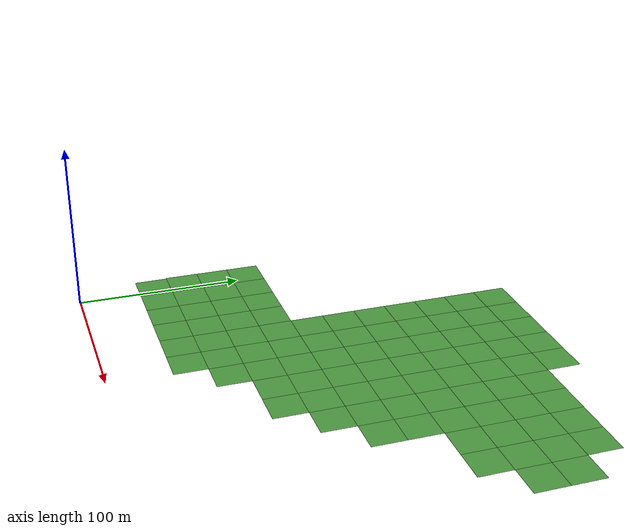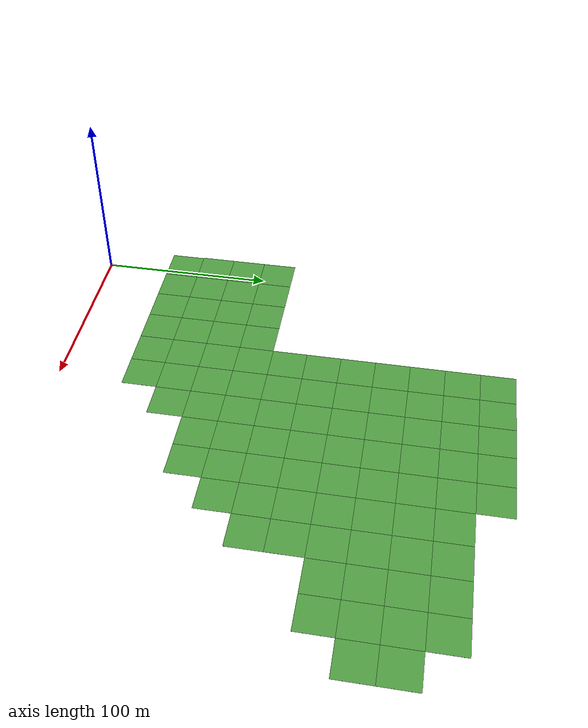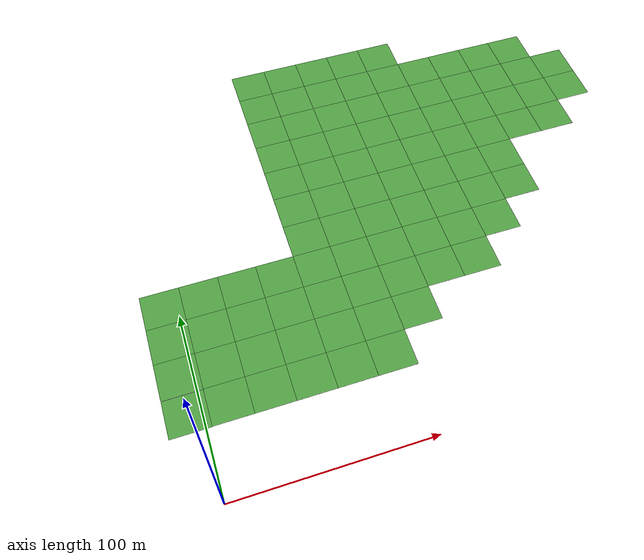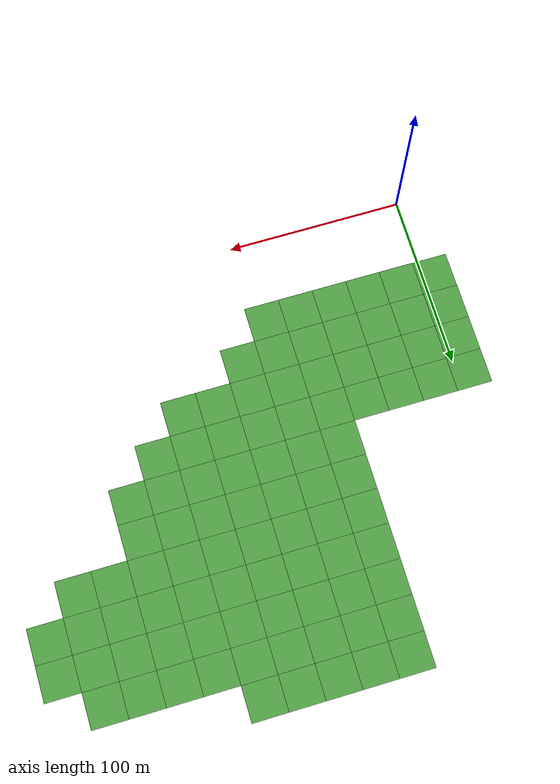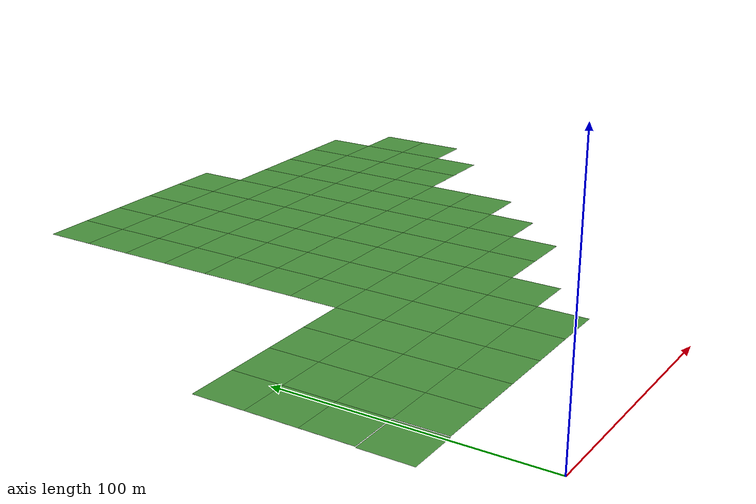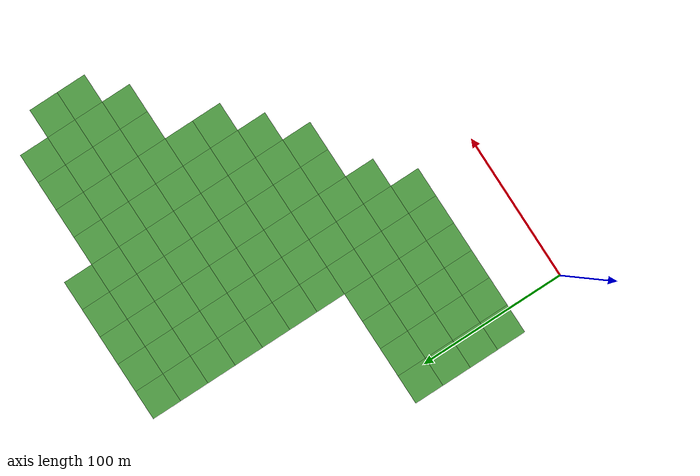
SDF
<sdf version="1.6">
 <world name="default">
  <model name="grass_plane_1">
   <static>1</static>
   <link name="link">
    <collision name="collision">
     <geometry><plane><normal>0 0 1</normal><size>500 500</size></plane></geometry>
     <surface><friction><ode><mu>0.5</mu><mu2>0.5</mu2></ode></friction></surface>
    </collision>
    <visual name="visual_0">
     <pose>-40 -40 0 0 -0 0</pose>
     <cast_shadows>0</cast_shadows>
     <geometry><plane><normal>0 0 1</normal><size>20 20</size></plane></geometry>
     <material>
      <script>
       <uri>model://grass_plane/materials/scripts</uri>
       <uri>model://grass_plane/materials/textures</uri>
       <name>vrc/grass</name>
      </script>
     </material>
    </visual>
    <visual name="visual_1">
     <pose>-20 -40 0 0 -0 0</pose>
     <cast_shadows>0</cast_shadows>
     <geometry><plane><normal>0 0 1</normal><size>20 20</size></plane></geometry>
     <material>
      <script>
       <uri>model://grass_plane/materials/scripts</uri>
       <uri>model://grass_plane/materials/textures</uri>
       <name>vrc/grass</name>
      </script>
     </material>
    </visual>
    <visual name="visual_2">
     <pose>0 -40 0 0 -0 0</pose>
     <cast_shadows>0</cast_shadows>
     <geometry><plane><normal>0 0 1</normal><size>20 20</size></plane></geometry>
     <material>
      <script>
       <uri>model://grass_plane/materials/scripts</uri>
       <uri>model://grass_plane/materials/textures</uri>
       <name>vrc/grass</name>
      </script>
     </material>
    </visual>
    <visual name="visual_3">
     <pose>20 -40 0 0 -0 0</pose>
     <cast_shadows>0</cast_shadows>
     <geometry><plane><normal>0 0 1</normal><size>20 20</size></plane></geometry>
     <material>
      <script>
       <uri>model://grass_plane/materials/scripts</uri>
       <uri>model://grass_plane/materials/textures</uri>
       <name>vrc/grass</name>
      </script>
     </material>
    </visual>
    <visual name="visual_4">
     <pose>40 -40 0 0 -0 0</pose>
     <cast_shadows>0</cast_shadows>
     <geometry><plane><normal>0 0 1</normal><size>20 20</size></plane></geometry>
     <material>
      <script>
       <uri>model://grass_plane/materials/scripts</uri>
       <uri>model://grass_plane/materials/textures</uri>
       <name>vrc/grass</name>
      </script>
     </material>
    </visual>
    <visual name="visual_5">
     <pose>60 -40 0 0 -0 0</pose>
     <cast_shadows>0</cast_shadows>
     <geometry><plane><normal>0 0 1</normal><size>20 20</size></plane></geometry>
     <material>
      <script>
       <uri>model://grass_plane/materials/scripts</uri>
       <uri>model://grass_plane/materials/textures</uri>
       <name>vrc/grass</name>
      </script>
     </material>
    </visual>
    <visual name="visual_6">
     <pose>-40 -20 0 0 -0 0</pose>
     <cast_shadows>0</cast_shadows>
     <geometry><plane><normal>0 0 1</normal><size>20 20</size></plane></geometry>
     <material>
      <script>
       <uri>model://grass_plane/materials/scripts</uri>
       <uri>model://grass_plane/materials/textures</uri>
       <name>vrc/grass</name>
      </script>
     </material>
    </visual>
    <visual name="visual_7">
     <pose>-20 -20 0 0 -0 0</pose>
     <cast_shadows>0</cast_shadows>
     <geometry><plane><normal>0 0 1</normal><size>20 20</size></plane></geometry>
     <material>
      <script>
       <uri>model://grass_plane/materials/scripts</uri>
       <uri>model://grass_plane/materials/textures</uri>
       <name>vrc/grass</name>
      </script>
     </material>
    </visual>
    <visual name="visual_8">
     <pose>0 -20 0 0 -0 0</pose>
     <cast_shadows>0</cast_shadows>
     <geometry><plane><normal>0 0 1</normal><size>20 20</size></plane></geometry>
     <material>
      <script>
       <uri>model://grass_plane/materials/scripts</uri>
       <uri>model://grass_plane/materials/textures</uri>
       <name>vrc/grass</name>
      </script>
     </material>
    </visual>
    <visual name="visual_9">
     <pose>20 -20 0 0 -0 0</pose>
     <cast_shadows>0</cast_shadows>
     <geometry><plane><normal>0 0 1</normal><size>20 20</size></plane></geometry>
     <material>
      <script>
       <uri>model://grass_plane/materials/scripts</uri>
       <uri>model://grass_plane/materials/textures</uri>
       <name>vrc/grass</name>
      </script>
     </material>
    </visual>
    <visual name="visual_10">
     <pose>40 -20 0 0 -0 0</pose>
     <cast_shadows>0</cast_shadows>
     <geometry><plane><normal>0 0 1</normal><size>20 20</size></plane></geometry>
     <material>
      <script>
       <uri>model://grass_plane/materials/scripts</uri>
       <uri>model://grass_plane/materials/textures</uri>
       <name>vrc/grass</name>
      </script>
     </material>
    </visual>
    <visual name="visual_11">
     <pose>60 -20 0 0 -0 0</pose>
     <cast_shadows>0</cast_shadows>
     <geometry><plane><normal>0 0 1</normal><size>20 20</size></plane></geometry>
     <material>
      <script>
       <uri>model://grass_plane/materials/scripts</uri>
       <uri>model://grass_plane/materials/textures</uri>
       <name>vrc/grass</name>
      </script>
     </material>
    </visual>
    <visual name="visual_12">
     <pose>80 -20 0 0 -0 0</pose>
     <cast_shadows>0</cast_shadows>
     <geometry><plane><normal>0 0 1</normal><size>20 20</size></plane></geometry>
     <material>
      <script>
       <uri>model://grass_plane/materials/scripts</uri>
       <uri>model://grass_plane/materials/textures</uri>
       <name>vrc/grass</name>
      </script>
     </material>
    </visual>
    <visual name="visual_13">
     <pose>-40 0 0 0 -0 0</pose>
     <cast_shadows>0</cast_shadows>
     <geometry><plane><normal>0 0 1</normal><size>20 20</size></plane></geometry>
     <material>
      <script>
       <uri>model://grass_plane/materials/scripts</uri>
       <uri>model://grass_plane/materials/textures</uri>
       <name>vrc/grass</name>
      </script>
     </material>
    </visual>
    <visual name="visual_14">
     <pose>-20 0 0 0 -0 0</pose>
     <cast_shadows>0</cast_shadows>
     <geometry><plane><normal>0 0 1</normal><size>20 20</size></plane></geometry>
     <material>
      <script>
       <uri>model://grass_plane/materials/scripts</uri>
       <uri>model://grass_plane/materials/textures</uri>
       <name>vrc/grass</name>
      </script>
     </material>
    </visual>
    <visual name="visual_15">
     <cast_shadows>0</cast_shadows>
     <geometry><plane><normal>0 0 1</normal><size>20 20</size></plane></geometry>
     <material>
      <script>
       <uri>model://grass_plane/materials/scripts</uri>
       <uri>model://grass_plane/materials/textures</uri>
       <name>vrc/grass</name>
      </script>
     </material>
    </visual>
    <visual name="visual_16">
     <pose>20 0 0 0 -0 0</pose>
     <cast_shadows>0</cast_shadows>
     <geometry><plane><normal>0 0 1</normal><size>20 20</size></plane></geometry>
     <material>
      <script>
       <uri>model://grass_plane/materials/scripts</uri>
       <uri>model://grass_plane/materials/textures</uri>
       <name>vrc/grass</name>
      </script>
     </material>
    </visual>
    <visual name="visual_17">
     <pose>40 0 0 0 -0 0</pose>
     <cast_shadows>0</cast_shadows>
     <geometry><plane><normal>0 0 1</normal><size>20 20</size></plane></geometry>
     <material>
      <script>
       <uri>model://grass_plane/materials/scripts</uri>
       <uri>model://grass_plane/materials/textures</uri>
       <name>vrc/grass</name>
      </script>
     </material>
    </visual>
    <visual name="visual_18">
     <pose>60 0 0 0 -0 0</pose>
     <cast_shadows>0</cast_shadows>
     <geometry><plane><normal>0 0 1</normal><size>20 20</size></plane></geometry>
     <material>
      <script>
       <uri>model://grass_plane/materials/scripts</uri>
       <uri>model://grass_plane/materials/textures</uri>
       <name>vrc/grass</name>
      </script>
     </material>
    </visual>
    <visual name="visual_19">
     <pose>80 0 0 0 -0 0</pose>
     <cast_shadows>0</cast_shadows>
     <geometry><plane><normal>0 0 1</normal><size>20 20</size></plane></geometry>
     <material>
      <script>
       <uri>model://grass_plane/materials/scripts</uri>
       <uri>model://grass_plane/materials/textures</uri>
       <name>vrc/grass</name>
      </script>
     </material>
    </visual>
    <visual name="visual_20">
     <pose>100 0 0 0 -0 0</pose>
     <cast_shadows>0</cast_shadows>
     <geometry><plane><normal>0 0 1</normal><size>20 20</size></plane></geometry>
     <material>
      <script>
       <uri>model://grass_plane/materials/scripts</uri>
       <uri>model://grass_plane/materials/textures</uri>
       <name>vrc/grass</name>
      </script>
     </material>
    </visual>
    <visual name="visual_21">
     <pose>120 0 0 0 -0 0</pose>
     <cast_shadows>0</cast_shadows>
     <geometry><plane><normal>0 0 1</normal><size>20 20</size></plane></geometry>
     <material>
      <script>
       <uri>model://grass_plane/materials/scripts</uri>
       <uri>model://grass_plane/materials/textures</uri>
       <name>vrc/grass</name>
      </script>
     </material>
    </visual>
    <visual name="visual_22">
     <pose>-40 20 0 0 -0 0</pose>
     <cast_shadows>0</cast_shadows>
     <geometry><plane><normal>0 0 1</normal><size>20 20</size></plane></geometry>
     <material>
      <script>
       <uri>model://grass_plane/materials/scripts</uri>
       <uri>model://grass_plane/materials/textures</uri>
       <name>vrc/grass</name>
      </script>
     </material>
    </visual>
    <visual name="visual_23">
     <pose>-20 20 0 0 -0 0</pose>
     <cast_shadows>0</cast_shadows>
     <geometry><plane><normal>0 0 1</normal><size>20 20</size></plane></geometry>
     <material>
      <script>
       <uri>model://grass_plane/materials/scripts</uri>
       <uri>model://grass_plane/materials/textures</uri>
       <name>vrc/grass</name>
      </script>
     </material>
    </visual>
    <visual name="visual_24">
     <pose>0 20 0 0 -0 0</pose>
     <cast_shadows>0</cast_shadows>
     <geometry><plane><normal>0 0 1</normal><size>20 20</size></plane></geometry>
     <material>
      <script>
       <uri>model://grass_plane/materials/scripts</uri>
       <uri>model://grass_plane/materials/textures</uri>
       <name>vrc/grass</name>
      </script>
     </material>
    </visual>
    <visual name="visual_25">
     <pose>20 20 0 0 -0 0</pose>
     <cast_shadows>0</cast_shadows>
     <geometry><plane><normal>0 0 1</normal><size>20 20</size></plane></geometry>
     <material>
      <script>
       <uri>model://grass_plane/materials/scripts</uri>
       <uri>model://grass_plane/materials/textures</uri>
       <name>vrc/grass</name>
      </script>
     </material>
    </visual>
    <visual name="visual_26">
     <pose>40 20 0 0 -0 0</pose>
     <cast_shadows>0</cast_shadows>
     <geometry><plane><normal>0 0 1</normal><size>20 20</size></plane></geometry>
     <material>
      <script>
       <uri>model://grass_plane/materials/scripts</uri>
       <uri>model://grass_plane/materials/textures</uri>
       <name>vrc/grass</name>
      </script>
     </material>
    </visual>
    <visual name="visual_27">
     <pose>60 20 0 0 -0 0</pose>
     <cast_shadows>0</cast_shadows>
     <geometry><plane><normal>0 0 1</normal><size>20 20</size></plane></geometry>
     <material>
      <script>
       <uri>model://grass_plane/materials/scripts</uri>
       <uri>model://grass_plane/materials/textures</uri>
       <name>vrc/grass</name>
      </script>
     </material>
    </visual>
    <visual name="visual_28">
     <pose>80 20 0 0 -0 0</pose>
     <cast_shadows>0</cast_shadows>
     <geometry><plane><normal>0 0 1</normal><size>20 20</size></plane></geometry>
     <material>
      <script>
       <uri>model://grass_plane/materials/scripts</uri>
       <uri>model://grass_plane/materials/textures</uri>
       <name>vrc/grass</name>
      </script>
     </material>
    </visual>
    <visual name="visual_29">
     <pose>100 20 0 0 -0 0</pose>
     <cast_shadows>0</cast_shadows>
     <geometry><plane><normal>0 0 1</normal><size>20 20</size></plane></geometry>
     <material>
      <script>
       <uri>model://grass_plane/materials/scripts</uri>
       <uri>model://grass_plane/materials/textures</uri>
       <name>vrc/grass</name>
      </script>
     </material>
    </visual>
    <visual name="visual_30">
     <pose>120 20 0 0 -0 0</pose>
     <cast_shadows>0</cast_shadows>
     <geometry><plane><normal>0 0 1</normal><size>20 20</size></plane></geometry>
     <material>
      <script>
       <uri>model://grass_plane/materials/scripts</uri>
       <uri>model://grass_plane/materials/textures</uri>
       <name>vrc/grass</name>
      </script>
     </material>
    </visual>
    <visual name="visual_31">
     <pose>140 20 0 0 -0 0</pose>
     <cast_shadows>0</cast_shadows>
     <geometry><plane><normal>0 0 1</normal><size>20 20</size></plane></geometry>
     <material>
      <script>
       <uri>model://grass_plane/materials/scripts</uri>
       <uri>model://grass_plane/materials/textures</uri>
       <name>vrc/grass</name>
      </script>
     </material>
    </visual>
    <visual name="visual_32">
     <pose>40 40 0 0 -0 0</pose>
     <cast_shadows>0</cast_shadows>
     <geometry><plane><normal>0 0 1</normal><size>20 20</size></plane></geometry>
     <material>
      <script>
       <uri>model://grass_plane/materials/scripts</uri>
       <uri>model://grass_plane/materials/textures</uri>
       <name>vrc/grass</name>
      </script>
     </material>
    </visual>
    <visual name="visual_33">
     <pose>60 40 0 0 -0 0</pose>
     <cast_shadows>0</cast_shadows>
     <geometry><plane><normal>0 0 1</normal><size>20 20</size></plane></geometry>
     <material>
      <script>
       <uri>model://grass_plane/materials/scripts</uri>
       <uri>model://grass_plane/materials/textures</uri>
       <name>vrc/grass</name>
      </script>
     </material>
    </visual>
    <visual name="visual_34">
     <pose>80 40 0 0 -0 0</pose>
     <cast_shadows>0</cast_shadows>
     <geometry><plane><normal>0 0 1</normal><size>20 20</size></plane></geometry>
     <material>
      <script>
       <uri>model://grass_plane/materials/scripts</uri>
       <uri>model://grass_plane/materials/textures</uri>
       <name>vrc/grass</name>
      </script>
     </material>
    </visual>
    <visual name="visual_35">
     <pose>100 40 0 0 -0 0</pose>
     <cast_shadows>0</cast_shadows>
     <geometry><plane><normal>0 0 1</normal><size>20 20</size></plane></geometry>
     <material>
      <script>
       <uri>model://grass_plane/materials/scripts</uri>
       <uri>model://grass_plane/materials/textures</uri>
       <name>vrc/grass</name>
      </script>
     </material>
    </visual>
    <visual name="visual_36">
     <pose>120 40 0 0 -0 0</pose>
     <cast_shadows>0</cast_shadows>
     <geometry><plane><normal>0 0 1</normal><size>20 20</size></plane></geometry>
     <material>
      <script>
       <uri>model://grass_plane/materials/scripts</uri>
       <uri>model://grass_plane/materials/textures</uri>
       <name>vrc/grass</name>
      </script>
     </material>
    </visual>
    <visual name="visual_37">
     <pose>140 40 0 0 -0 0</pose>
     <cast_shadows>0</cast_shadows>
     <geometry><plane><normal>0 0 1</normal><size>20 20</size></plane></geometry>
     <material>
      <script>
       <uri>model://grass_plane/materials/scripts</uri>
       <uri>model://grass_plane/materials/textures</uri>
       <name>vrc/grass</name>
      </script>
     </material>
    </visual>
    <visual name="visual_38">
     <pose>160 40 0 0 -0 0</pose>
     <cast_shadows>0</cast_shadows>
     <geometry><plane><normal>0 0 1</normal><size>20 20</size></plane></geometry>
     <material>
      <script>
       <uri>model://grass_plane/materials/scripts</uri>
       <uri>model://grass_plane/materials/textures</uri>
       <name>vrc/grass</name>
      </script>
     </material>
    </visual>
    <visual name="visual_39">
     <pose>40 60 0 0 -0 0</pose>
     <cast_shadows>0</cast_shadows>
     <geometry><plane><normal>0 0 1</normal><size>20 20</size></plane></geometry>
     <material>
      <script>
       <uri>model://grass_plane/materials/scripts</uri>
       <uri>model://grass_plane/materials/textures</uri>
       <name>vrc/grass</name>
      </script>
     </material>
    </visual>
    <visual name="visual_40">
     <pose>60 60 0 0 -0 0</pose>
     <cast_shadows>0</cast_shadows>
     <geometry><plane><normal>0 0 1</normal><size>20 20</size></plane></geometry>
     <material>
      <script>
       <uri>model://grass_plane/materials/scripts</uri>
       <uri>model://grass_plane/materials/textures</uri>
       <name>vrc/grass</name>
      </script>
     </material>
    </visual>
    <visual name="visual_41">
     <pose>80 60 0 0 -0 0</pose>
     <cast_shadows>0</cast_shadows>
     <geometry><plane><normal>0 0 1</normal><size>20 20</size></plane></geometry>
     <material>
      <script>
       <uri>model://grass_plane/materials/scripts</uri>
       <uri>model://grass_plane/materials/textures</uri>
       <name>vrc/grass</name>
      </script>
     </material>
    </visual>
    <visual name="visual_42">
     <pose>100 60 0 0 -0 0</pose>
     <cast_shadows>0</cast_shadows>
     <geometry><plane><normal>0 0 1</normal><size>20 20</size></plane></geometry>
     <material>
      <script>
       <uri>model://grass_plane/materials/scripts</uri>
       <uri>model://grass_plane/materials/textures</uri>
       <name>vrc/grass</name>
      </script>
     </material>
    </visual>
    <visual name="visual_43">
     <pose>120 60 0 0 -0 0</pose>
     <cast_shadows>0</cast_shadows>
     <geometry><plane><normal>0 0 1</normal><size>20 20</size></plane></geometry>
     <material>
      <script>
       <uri>model://grass_plane/materials/scripts</uri>
       <uri>model://grass_plane/materials/textures</uri>
       <name>vrc/grass</name>
      </script>
     </material>
    </visual>
    <visual name="visual_44">
     <pose>140 60 0 0 -0 0</pose>
     <cast_shadows>0</cast_shadows>
     <geometry><plane><normal>0 0 1</normal><size>20 20</size></plane></geometry>
     <material>
      <script>
       <uri>model://grass_plane/materials/scripts</uri>
       <uri>model://grass_plane/materials/textures</uri>
       <name>vrc/grass</name>
      </script>
     </material>
    </visual>
    <visual name="visual_45">
     <pose>160 60 0 0 -0 0</pose>
     <cast_shadows>0</cast_shadows>
     <geometry><plane><normal>0 0 1</normal><size>20 20</size></plane></geometry>
     <material>
      <script>
       <uri>model://grass_plane/materials/scripts</uri>
       <uri>model://grass_plane/materials/textures</uri>
       <name>vrc/grass</name>
      </script>
     </material>
    </visual>
    <visual name="visual_46">
     <pose>40 80 0 0 -0 0</pose>
     <cast_shadows>0</cast_shadows>
     <geometry><plane><normal>0 0 1</normal><size>20 20</size></plane></geometry>
     <material>
      <script>
       <uri>model://grass_plane/materials/scripts</uri>
       <uri>model://grass_plane/materials/textures</uri>
       <name>vrc/grass</name>
      </script>
     </material>
    </visual>
    <visual name="visual_47">
     <pose>60 80 0 0 -0 0</pose>
     <cast_shadows>0</cast_shadows>
     <geometry><plane><normal>0 0 1</normal><size>20 20</size></plane></geometry>
     <material>
      <script>
       <uri>model://grass_plane/materials/scripts</uri>
       <uri>model://grass_plane/materials/textures</uri>
       <name>vrc/grass</name>
      </script>
     </material>
    </visual>
    <visual name="visual_48">
     <pose>80 80 0 0 -0 0</pose>
     <cast_shadows>0</cast_shadows>
     <geometry><plane><normal>0 0 1</normal><size>20 20</size></plane></geometry>
     <material>
      <script>
       <uri>model://grass_plane/materials/scripts</uri>
       <uri>model://grass_plane/materials/textures</uri>
       <name>vrc/grass</name>
      </script>
     </material>
    </visual>
    <visual name="visual_49">
     <pose>100 80 0 0 -0 0</pose>
     <cast_shadows>0</cast_shadows>
     <geometry><plane><normal>0 0 1</normal><size>20 20</size></plane></geometry>
     <material>
      <script>
       <uri>model://grass_plane/materials/scripts</uri>
       <uri>model://grass_plane/materials/textures</uri>
       <name>vrc/grass</name>
      </script>
     </material>
    </visual>
    <visual name="visual_50">
     <pose>120 80 0 0 -0 0</pose>
     <cast_shadows>0</cast_shadows>
     <geometry><plane><normal>0 0 1</normal><size>20 20</size></plane></geometry>
     <material>
      <script>
       <uri>model://grass_plane/materials/scripts</uri>
       <uri>model://grass_plane/materials/textures</uri>
       <name>vrc/grass</name>
      </script>
     </material>
    </visual>
    <visual name="visual_51">
     <pose>140 80 0 0 -0 0</pose>
     <cast_shadows>0</cast_shadows>
     <geometry><plane><normal>0 0 1</normal><size>20 20</size></plane></geometry>
     <material>
      <script>
       <uri>model://grass_plane/materials/scripts</uri>
       <uri>model://grass_plane/materials/textures</uri>
       <name>vrc/grass</name>
      </script>
     </material>
    </visual>
    <visual name="visual_52">
     <pose>160 80 0 0 -0 0</pose>
     <cast_shadows>0</cast_shadows>
     <geometry><plane><normal>0 0 1</normal><size>20 20</size></plane></geometry>
     <material>
      <script>
       <uri>model://grass_plane/materials/scripts</uri>
       <uri>model://grass_plane/materials/textures</uri>
       <name>vrc/grass</name>
      </script>
     </material>
    </visual>
    <visual name="visual_53">
     <pose>180 80 0 0 -0 0</pose>
     <cast_shadows>0</cast_shadows>
     <geometry><plane><normal>0 0 1</normal><size>20 20</size></plane></geometry>
     <material>
      <script>
       <uri>model://grass_plane/materials/scripts</uri>
       <uri>model://grass_plane/materials/textures</uri>
       <name>vrc/grass</name>
      </script>
     </material>
    </visual>
    <visual name="visual_54">
     <pose>200 80 0 0 -0 0</pose>
     <cast_shadows>0</cast_shadows>
     <geometry><plane><normal>0 0 1</normal><size>20 20</size></plane></geometry>
     <material>
      <script>
       <uri>model://grass_plane/materials/scripts</uri>
       <uri>model://grass_plane/materials/textures</uri>
       <name>vrc/grass</name>
      </script>
     </material>
    </visual>
    <visual name="visual_55">
     <pose>40 100 0 0 -0 0</pose>
     <cast_shadows>0</cast_shadows>
     <geometry><plane><normal>0 0 1</normal><size>20 20</size></plane></geometry>
     <material>
      <script>
       <uri>model://grass_plane/materials/scripts</uri>
       <uri>model://grass_plane/materials/textures</uri>
       <name>vrc/grass</name>
      </script>
     </material>
    </visual>
    <visual name="visual_56">
     <pose>60 100 0 0 -0 0</pose>
     <cast_shadows>0</cast_shadows>
     <geometry><plane><normal>0 0 1</normal><size>20 20</size></plane></geometry>
     <material>
      <script>
       <uri>model://grass_plane/materials/scripts</uri>
       <uri>model://grass_plane/materials/textures</uri>
       <name>vrc/grass</name>
      </script>
     </material>
    </visual>
    <visual name="visual_57">
     <pose>80 100 0 0 -0 0</pose>
     <cast_shadows>0</cast_shadows>
     <geometry><plane><normal>0 0 1</normal><size>20 20</size></plane></geometry>
     <material>
      <script>
       <uri>model://grass_plane/materials/scripts</uri>
       <uri>model://grass_plane/materials/textures</uri>
       <name>vrc/grass</name>
      </script>
     </material>
    </visual>
    <visual name="visual_58">
     <pose>100 100 0 0 -0 0</pose>
     <cast_shadows>0</cast_shadows>
     <geometry><plane><normal>0 0 1</normal><size>20 20</size></plane></geometry>
     <material>
      <script>
       <uri>model://grass_plane/materials/scripts</uri>
       <uri>model://grass_plane/materials/textures</uri>
       <name>vrc/grass</name>
      </script>
     </material>
    </visual>
    <visual name="visual_59">
     <pose>120 100 0 0 -0 0</pose>
     <cast_shadows>0</cast_shadows>
     <geometry><plane><normal>0 0 1</normal><size>20 20</size></plane></geometry>
     <material>
      <script>
       <uri>model://grass_plane/materials/scripts</uri>
       <uri>model://grass_plane/materials/textures</uri>
       <name>vrc/grass</name>
      </script>
     </material>
    </visual>
    <visual name="visual_60">
     <pose>140 100 0 0 -0 0</pose>
     <cast_shadows>0</cast_shadows>
     <geometry><plane><normal>0 0 1</normal><size>20 20</size></plane></geometry>
     <material>
      <script>
       <uri>model://grass_plane/materials/scripts</uri>
       <uri>model://grass_plane/materials/textures</uri>
       <name>vrc/grass</name>
      </script>
     </material>
    </visual>
    <visual name="visual_61">
     <pose>160 100 0 0 -0 0</pose>
     <cast_shadows>0</cast_shadows>
     <geometry><plane><normal>0 0 1</normal><size>20 20</size></plane></geometry>
     <material>
      <script>
       <uri>model://grass_plane/materials/scripts</uri>
       <uri>model://grass_plane/materials/textures</uri>
       <name>vrc/grass</name>
      </script>
     </material>
    </visual>
    <visual name="visual_62">
     <pose>180 100 0 0 -0 0</pose>
     <cast_shadows>0</cast_shadows>
     <geometry><plane><normal>0 0 1</normal><size>20 20</size></plane></geometry>
     <material>
      <script>
       <uri>model://grass_plane/materials/scripts</uri>
       <uri>model://grass_plane/materials/textures</uri>
       <name>vrc/grass</name>
      </script>
     </material>
    </visual>
    <visual name="visual_63">
     <pose>200 100 0 0 -0 0</pose>
     <cast_shadows>0</cast_shadows>
     <geometry><plane><normal>0 0 1</normal><size>20 20</size></plane></geometry>
     <material>
      <script>
       <uri>model://grass_plane/materials/scripts</uri>
       <uri>model://grass_plane/materials/textures</uri>
       <name>vrc/grass</name>
      </script>
     </material>
    </visual>
    <visual name="visual_63a">
     <pose>220 100 0 0 -0 0</pose>
     <cast_shadows>0</cast_shadows>
     <geometry><plane><normal>0 0 1</normal><size>20 20</size></plane></geometry>
     <material>
      <script>
       <uri>model://grass_plane/materials/scripts</uri>
       <uri>model://grass_plane/materials/textures</uri>
       <name>vrc/grass</name>
      </script>
     </material>
    </visual>
    <visual name="visual_64">
     <pose>40 120 0 0 -0 0</pose>
     <cast_shadows>0</cast_shadows>
     <geometry><plane><normal>0 0 1</normal><size>20 20</size></plane></geometry>
     <material>
      <script>
       <uri>model://grass_plane/materials/scripts</uri>
       <uri>model://grass_plane/materials/textures</uri>
       <name>vrc/grass</name>
      </script>
     </material>
    </visual>
    <visual name="visual_65">
     <pose>60 120 0 0 -0 0</pose>
     <cast_shadows>0</cast_shadows>
     <geometry><plane><normal>0 0 1</normal><size>20 20</size></plane></geometry>
     <material>
      <script>
       <uri>model://grass_plane/materials/scripts</uri>
       <uri>model://grass_plane/materials/textures</uri>
       <name>vrc/grass</name>
      </script>
     </material>
    </visual>
    <visual name="visual_66">
     <pose>80 120 0 0 -0 0</pose>
     <cast_shadows>0</cast_shadows>
     <geometry><plane><normal>0 0 1</normal><size>20 20</size></plane></geometry>
     <material>
      <script>
       <uri>model://grass_plane/materials/scripts</uri>
       <uri>model://grass_plane/materials/textures</uri>
       <name>vrc/grass</name>
      </script>
     </material>
    </visual>
    <visual name="visual_67">
     <pose>100 120 0 0 -0 0</pose>
     <cast_shadows>0</cast_shadows>
     <geometry><plane><normal>0 0 1</normal><size>20 20</size></plane></geometry>
     <material>
      <script>
       <uri>model://grass_plane/materials/scripts</uri>
       <uri>model://grass_plane/materials/textures</uri>
       <name>vrc/grass</name>
      </script>
     </material>
    </visual>
    <visual name="visual_68">
     <pose>120 120 0 0 -0 0</pose>
     <cast_shadows>0</cast_shadows>
     <geometry><plane><normal>0 0 1</normal><size>20 20</size></plane></geometry>
     <material>
      <script>
       <uri>model://grass_plane/materials/scripts</uri>
       <uri>model://grass_plane/materials/textures</uri>
       <name>vrc/grass</name>
      </script>
     </material>
    </visual>
    <visual name="visual_69">
     <pose>140 120 0 0 -0 0</pose>
     <cast_shadows>0</cast_shadows>
     <geometry><plane><normal>0 0 1</normal><size>20 20</size></plane></geometry>
     <material>
      <script>
       <uri>model://grass_plane/materials/scripts</uri>
       <uri>model://grass_plane/materials/textures</uri>
       <name>vrc/grass</name>
      </script>
     </material>
    </visual>
    <visual name="visual_70">
     <pose>160 120 0 0 -0 0</pose>
     <cast_shadows>0</cast_shadows>
     <geometry><plane><normal>0 0 1</normal><size>20 20</size></plane></geometry>
     <material>
      <script>
       <uri>model://grass_plane/materials/scripts</uri>
       <uri>model://grass_plane/materials/textures</uri>
       <name>vrc/grass</name>
      </script>
     </material>
    </visual>
    <visual name="visual_71">
     <pose>180 120 0 0 -0 0</pose>
     <cast_shadows>0</cast_shadows>
     <geometry><plane><normal>0 0 1</normal><size>20 20</size></plane></geometry>
     <material>
      <script>
       <uri>model://grass_plane/materials/scripts</uri>
       <uri>model://grass_plane/materials/textures</uri>
       <name>vrc/grass</name>
      </script>
     </material>
    </visual>
    <visual name="visual_72">
     <pose>200 120 0 0 -0 0</pose>
     <cast_shadows>0</cast_shadows>
     <geometry><plane><normal>0 0 1</normal><size>20 20</size></plane></geometry>
     <material>
      <script>
       <uri>model://grass_plane/materials/scripts</uri>
       <uri>model://grass_plane/materials/textures</uri>
       <name>vrc/grass</name>
      </script>
     </material>
    </visual>
    <visual name="visual_72a">
     <pose>220 120 0 0 -0 0</pose>
     <cast_shadows>0</cast_shadows>
     <geometry><plane><normal>0 0 1</normal><size>20 20</size></plane></geometry>
     <material>
      <script>
       <uri>model://grass_plane/materials/scripts</uri>
       <uri>model://grass_plane/materials/textures</uri>
       <name>vrc/grass</name>
      </script>
     </material>
    </visual>
    <visual name="visual_73">
     <pose>40 140 0 0 -0 0</pose>
     <cast_shadows>0</cast_shadows>
     <geometry><plane><normal>0 0 1</normal><size>20 20</size></plane></geometry>
     <material>
      <script>
       <uri>model://grass_plane/materials/scripts</uri>
       <uri>model://grass_plane/materials/textures</uri>
       <name>vrc/grass</name>
      </script>
     </material>
    </visual>
    <visual name="visual_74">
     <pose>60 140 0 0 -0 0</pose>
     <cast_shadows>0</cast_shadows>
     <geometry><plane><normal>0 0 1</normal><size>20 20</size></plane></geometry>
     <material>
      <script>
       <uri>model://grass_plane/materials/scripts</uri>
       <uri>model://grass_plane/materials/textures</uri>
       <name>vrc/grass</name>
      </script>
     </material>
    </visual>
    <visual name="visual_75">
     <pose>80 140 0 0 -0 0</pose>
     <cast_shadows>0</cast_shadows>
     <geometry><plane><normal>0 0 1</normal><size>20 20</size></plane></geometry>
     <material>
      <script>
       <uri>model://grass_plane/materials/scripts</uri>
       <uri>model://grass_plane/materials/textures</uri>
       <name>vrc/grass</name>
      </script>
     </material>
    </visual>
    <visual name="visual_76">
     <pose>100 140 0 0 -0 0</pose>
     <cast_shadows>0</cast_shadows>
     <geometry><plane><normal>0 0 1</normal><size>20 20</size></plane></geometry>
     <material>
      <script>
       <uri>model://grass_plane/materials/scripts</uri>
       <uri>model://grass_plane/materials/textures</uri>
       <name>vrc/grass</name>
      </script>
     </material>
    </visual>
    <visual name="visual_77">
     <pose>120 140 0 0 -0 0</pose>
     <cast_shadows>0</cast_shadows>
     <geometry><plane><normal>0 0 1</normal><size>20 20</size></plane></geometry>
     <material>
      <script>
       <uri>model://grass_plane/materials/scripts</uri>
       <uri>model://grass_plane/materials/textures</uri>
       <name>vrc/grass</name>
      </script>
     </material>
    </visual>
    <visual name="visual_78">
     <pose>140 140 0 0 -0 0</pose>
     <cast_shadows>0</cast_shadows>
     <geometry><plane><normal>0 0 1</normal><size>20 20</size></plane></geometry>
     <material>
      <script>
       <uri>model://grass_plane/materials/scripts</uri>
       <uri>model://grass_plane/materials/textures</uri>
       <name>vrc/grass</name>
      </script>
     </material>
    </visual>
    <visual name="visual_79">
     <pose>160 140 0 0 -0 0</pose>
     <cast_shadows>0</cast_shadows>
     <geometry><plane><normal>0 0 1</normal><size>20 20</size></plane></geometry>
     <material>
      <script>
       <uri>model://grass_plane/materials/scripts</uri>
       <uri>model://grass_plane/materials/textures</uri>
       <name>vrc/grass</name>
      </script>
     </material>
    </visual>
    <visual name="visual_80">
     <pose>180 140 0 0 -0 0</pose>
     <cast_shadows>0</cast_shadows>
     <geometry><plane><normal>0 0 1</normal><size>20 20</size></plane></geometry>
     <material>
      <script>
       <uri>model://grass_plane/materials/scripts</uri>
       <uri>model://grass_plane/materials/textures</uri>
       <name>vrc/grass</name>
      </script>
     </material>
    </visual>
    <visual name="visual_81">
     <pose>200 140 0 0 -0 0</pose>
     <cast_shadows>0</cast_shadows>
     <geometry><plane><normal>0 0 1</normal><size>20 20</size></plane></geometry>
     <material>
      <script>
       <uri>model://grass_plane/materials/scripts</uri>
       <uri>model://grass_plane/materials/textures</uri>
       <name>vrc/grass</name>
      </script>
     </material>
    </visual>
    <visual name="visual_82">
     <pose>40 160 0 0 -0 0</pose>
     <cast_shadows>0</cast_shadows>
     <geometry><plane><normal>0 0 1</normal><size>20 20</size></plane></geometry>
     <material>
      <script>
       <uri>model://grass_plane/materials/scripts</uri>
       <uri>model://grass_plane/materials/textures</uri>
       <name>vrc/grass</name>
      </script>
     </material>
    </visual>
    <visual name="visual_83">
     <pose>60 160 0 0 -0 0</pose>
     <cast_shadows>0</cast_shadows>
     <geometry><plane><normal>0 0 1</normal><size>20 20</size></plane></geometry>
     <material>
      <script>
       <uri>model://grass_plane/materials/scripts</uri>
       <uri>model://grass_plane/materials/textures</uri>
       <name>vrc/grass</name>
      </script>
     </material>
    </visual>
    <visual name="visual_84">
     <pose>80 160 0 0 -0 0</pose>
     <cast_shadows>0</cast_shadows>
     <geometry><plane><normal>0 0 1</normal><size>20 20</size></plane></geometry>
     <material>
      <script>
       <uri>model://grass_plane/materials/scripts</uri>
       <uri>model://grass_plane/materials/textures</uri>
       <name>vrc/grass</name>
      </script>
     </material>
    </visual>
    <visual name="visual_85">
     <pose>100 160 0 0 -0 0</pose>
     <cast_shadows>0</cast_shadows>
     <geometry><plane><normal>0 0 1</normal><size>20 20</size></plane></geometry>
     <material>
      <script>
       <uri>model://grass_plane/materials/scripts</uri>
       <uri>model://grass_plane/materials/textures</uri>
       <name>vrc/grass</name>
      </script>
     </material>
    </visual>
    <visual name="visual_86">
     <pose>120 160 0 0 -0 0</pose>
     <cast_shadows>0</cast_shadows>
     <geometry><plane><normal>0 0 1</normal><size>20 20</size></plane></geometry>
     <material>
      <script>
       <uri>model://grass_plane/materials/scripts</uri>
       <uri>model://grass_plane/materials/textures</uri>
       <name>vrc/grass</name>
      </script>
     </material>
    </visual>
   </link>
   <pose>32.6667 87.2936 0 0 -0 0</pose>
  </model>
 </world>
</sdf>
